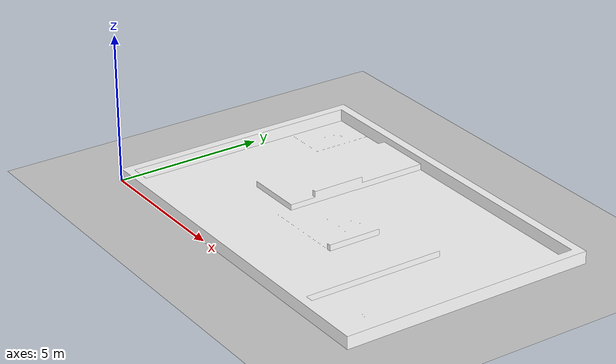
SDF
<sdf version='1.7'>
  <world name='default'>
    <model name='ground_plane'>
      <static>1</static>
      <link name='link'>
        <collision name='collision'>
          <geometry>
            <plane>
              <normal>0 0 1</normal>
              <size>100 100</size>
            </plane>
          </geometry>
          <surface>
            <contact>
              <collide_bitmask>65535</collide_bitmask>
              <ode/>
            </contact>
            <friction>
              <ode>
                <mu>100</mu>
                <mu2>50</mu2>
              </ode>
              <torsional>
                <ode/>
              </torsional>
            </friction>
            <bounce/>
          </surface>
          <max_contacts>10</max_contacts>
        </collision>
        <visual name='visual'>
          <cast_shadows>0</cast_shadows>
          <geometry>
            <plane>
              <normal>0 0 1</normal>
              <size>100 100</size>
            </plane>
          </geometry>
          <material>
            <script>
              <uri>file://media/materials/scripts/gazebo.material</uri>
              <name>Gazebo/Grey</name>
            </script>
          </material>
        </visual>
        <self_collide>0</self_collide>
        <enable_wind>0</enable_wind>
        <kinematic>0</kinematic>
      </link>
    </model>

    <gravity>0 0 -9.8</gravity>
    <magnetic_field>6e-06 2.3e-05 -4.2e-05</magnetic_field>
    <atmosphere type='adiabatic'/>

    <physics type='ode'>
      <max_step_size>0.001</max_step_size>
      <real_time_factor>1</real_time_factor>
      <real_time_update_rate>1000</real_time_update_rate>
    </physics>

    <scene>
      <ambient>0.4 0.4 0.4 1</ambient>
      <background>0.7 0.7 0.7 1</background>
      <shadows>1</shadows>
    </scene>

    <audio>
      <device>default</device>
    </audio>

    <wind/>

    <spherical_coordinates>
      <surface_model>EARTH_WGS84</surface_model>
      <latitude_deg>0</latitude_deg>
      <longitude_deg>0</longitude_deg>
      <elevation>0</elevation>
      <heading_deg>0</heading_deg>
    </spherical_coordinates>

    <model name='RMUL2026_world'>
      <pose>6.30 4.305 -0.113 0 0 3.1415926</pose>
      <link name='body'>
        <pose>0 0 0 0 0 0</pose>
        <self_collide>0</self_collide>
        <kinematic>0</kinematic>
        <gravity>1</gravity>
        <visual name='visual'>
          <geometry>
            <mesh>
              <uri>model://RMUL2026_world/meshes/RMUL_2026.stl</uri>
              <scale>0.001 0.001 0.001</scale>
            </mesh>
          </geometry>
          <material>
            <ambient>0.3 0.3 0.3 1</ambient>
            <diffuse>1 1 1 1</diffuse>
            <specular>0.1 0.1 0.1 1</specular>
          </material>
        </visual>
        <collision name='collision'>
          <geometry>
            <mesh>
              <uri>model://RMUL2026_world/meshes/RMUL_2026.stl</uri>
              <scale>0.001 0.001 0.001</scale>
            </mesh>
          </geometry>
        </collision>
      </link>
      <static>true</static>
    </model>

    <light name='user_directional_light_0' type='directional'>
      <pose>5.92611 3.87759 1 0 -0 0</pose>
      <diffuse>0.5 0.5 0.5 1</diffuse>
      <specular>0.1 0.1 0.1 1</specular>
      <direction>0.1 0.1 -0.9</direction>
      <attenuation>
        <range>20</range>
        <constant>0.5</constant>
        <linear>0.01</linear>
        <quadratic>0.001</quadratic>
      </attenuation>
      <cast_shadows>1</cast_shadows>
    </light>
  </world>
</sdf>
